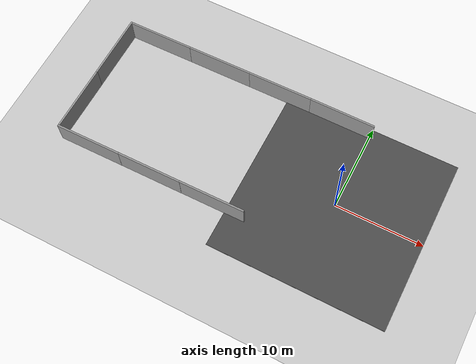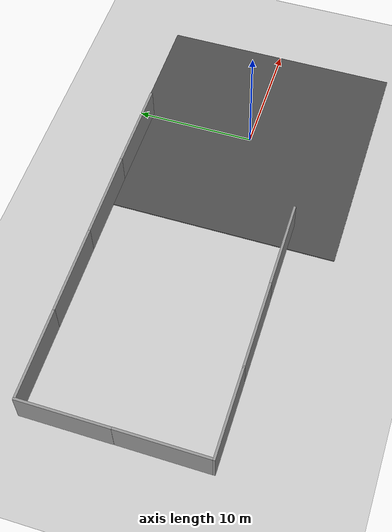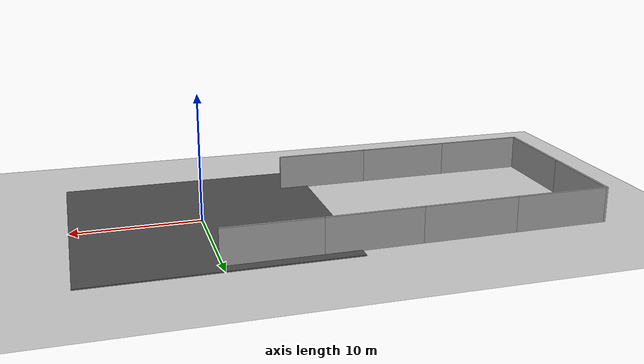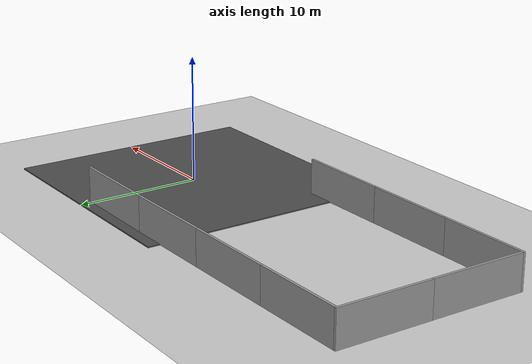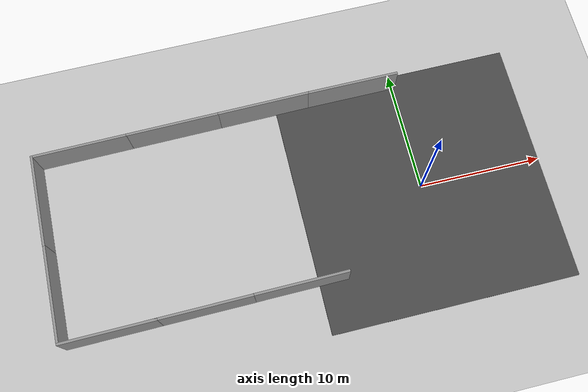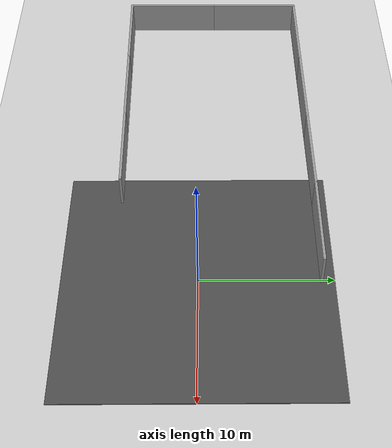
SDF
<sdf version="1.6">
 <world name="default">
  <light name="sun" type="directional">
   <pose>0 0 10 0 -0 0</pose>
   <diffuse>0.8 0.8 0.8 1</diffuse>
   <specular>0.1 0.1 0.1 1</specular>
   <attenuation>
    <range>1000</range>
    <constant>0.9</constant>
    <linear>0.01</linear>
    <quadratic>0.001</quadratic>
   </attenuation>
   <direction>-0.5 0.5 -1</direction>
  </light>
  <model name="ground_plane">
   <static>1</static>
   <link name="link">
    <collision name="collision">
     <geometry><plane><normal>0 0 1</normal><size>100 100</size></plane></geometry>
     <surface><friction><ode><mu>100</mu><mu2>50</mu2></ode></friction></surface>
    </collision>
    <visual name="visual">
     <cast_shadows>0</cast_shadows>
     <geometry><plane><normal>0 0 1</normal><size>100 100</size></plane></geometry>
     <material>
      <script><uri>file://media/materials/scripts/gazebo.material</uri><name>Gazebo/Grey</name></script>
     </material>
    </visual>
   </link>
  </model>
  <model name="asphalt_plane">
   <static>1</static>
   <link name="link">
    <collision name="collision"><geometry><box><size>20 20 0.1</size></box></geometry></collision>
    <visual name="visual">
     <cast_shadows>0</cast_shadows>
     <geometry><box><size>20 20 0.1</size></box></geometry>
     <material>
      <script>
       <uri>model://asphalt_plane/materials/scripts</uri>
       <uri>model://asphalt_plane/materials/textures</uri>
       <name>vrc/asphalt</name>
      </script>
     </material>
    </visual>
   </link>
  </model>
  <physics name="default_physics" default="0" type="ode">
   <ode>
    <solver>
     <type>quick</type>
     <iters>10</iters>
     <sor>1.3</sor>
     <use_dynamic_moi_rescaling>0</use_dynamic_moi_rescaling>
    </solver>
    <constraints>
     <cfm>0</cfm>
     <erp>0.2</erp>
     <contact_max_correcting_vel>100</contact_max_correcting_vel>
     <contact_surface_layer>0.001</contact_surface_layer>
    </constraints>
   </ode>
   <max_step_size>0.002</max_step_size>
   <real_time_factor>1</real_time_factor>
   <real_time_update_rate>500</real_time_update_rate>
  </physics>
  <model name="grey_wall">
   <static>1</static>
   <link name="link">
    <pose>0 0 1.4 0 -0 0</pose>
    <collision name="collision"><geometry><box><size>7.5 0.2 2.8</size></box></geometry></collision>
    <visual name="visual">
     <cast_shadows>0</cast_shadows>
     <geometry><box><size>7.5 0.2 2.8</size></box></geometry>
     <material>
      <script>
       <uri>model://grey_wall/materials/scripts</uri>
       <uri>model://grey_wall/materials/textures</uri>
       <name>vrc/grey_wall</name>
      </script>
     </material>
    </visual>
   </link>
   <pose>-10.9616 8.96597 0 0 0 -3.1323</pose>
  </model>
  <model name="grey_wall2">
   <static>1</static>
   <link name="link">
    <pose>0 0 1.4 0 -0 0</pose>
    <collision name="collision"><geometry><box><size>7.5 0.2 2.8</size></box></geometry></collision>
    <visual name="visual">
     <cast_shadows>0</cast_shadows>
     <geometry><box><size>7.5 0.2 2.8</size></box></geometry>
     <material>
      <script>
       <uri>model://grey_wall/materials/scripts</uri>
       <uri>model://grey_wall/materials/textures</uri>
       <name>vrc/grey_wall</name>
      </script>
     </material>
    </visual>
   </link>
   <pose>-3.5 9 0 0 -0 0</pose>
  </model>
  <gravity>0 0 -9.8066</gravity>
  <magnetic_field>6e-06 2.3e-05 -4.2e-05</magnetic_field>
  <atmosphere type="adiabatic"/>
  <scene><ambient>0.4 0.4 0.4 1</ambient><background>0.7 0.7 0.7 1</background><shadows>1</shadows></scene>
  <spherical_coordinates>
   <surface_model>EARTH_WGS84</surface_model>
   <latitude_deg>0</latitude_deg>
   <longitude_deg>0</longitude_deg>
   <elevation>0</elevation>
   <heading_deg>0</heading_deg>
  </spherical_coordinates>
  <model name="grey_wall_clone">
   <static>1</static>
   <link name="link">
    <pose>0 0 1.4 0 -0 0</pose>
    <collision name="collision"><geometry><box><size>7.5 0.2 2.8</size></box></geometry></collision>
    <visual name="visual">
     <cast_shadows>0</cast_shadows>
     <geometry><box><size>7.5 0.2 2.8</size></box></geometry>
     <material>
      <script>
       <uri>model://grey_wall/materials/scripts</uri>
       <uri>model://grey_wall/materials/textures</uri>
       <name>vrc/grey_wall</name>
      </script>
     </material>
    </visual>
   </link>
   <pose>-18.4246 8.89629 0 0 0 -3.1323</pose>
  </model>
  <model name="grey_wall_clone_clone">
   <static>1</static>
   <link name="link">
    <pose>0 0 1.4 0 -0 0</pose>
    <collision name="collision"><geometry><box><size>7.5 0.2 2.8</size></box></geometry></collision>
    <visual name="visual">
     <cast_shadows>0</cast_shadows>
     <geometry><box><size>7.5 0.2 2.8</size></box></geometry>
     <material>
      <script>
       <uri>model://grey_wall/materials/scripts</uri>
       <uri>model://grey_wall/materials/textures</uri>
       <name>vrc/grey_wall</name>
      </script>
     </material>
    </visual>
   </link>
   <pose>-25.8751 8.82654 0 0 0 -3.1323</pose>
  </model>
  <model name="grey_wall_0">
   <static>1</static>
   <link name="link">
    <pose>0 0 1.4 0 -0 0</pose>
    <collision name="collision"><geometry><box><size>7.5 0.2 2.8</size></box></geometry></collision>
    <visual name="visual">
     <cast_shadows>0</cast_shadows>
     <geometry><box><size>7.5 0.2 2.8</size></box></geometry>
     <material>
      <script>
       <uri>model://grey_wall/materials/scripts</uri>
       <uri>model://grey_wall/materials/textures</uri>
       <name>vrc/grey_wall</name>
      </script>
     </material>
    </visual>
   </link>
   <pose>-29.7286 5.13858 0 0 -0 1.56429</pose>
  </model>
  <model name="grey_wall_clone_clone_0">
   <static>1</static>
   <link name="link">
    <pose>0 0 1.4 0 -0 0</pose>
    <collision name="collision"><geometry><box><size>7.5 0.2 2.8</size></box></geometry></collision>
    <visual name="visual">
     <cast_shadows>0</cast_shadows>
     <geometry><box><size>7.5 0.2 2.8</size></box></geometry>
     <material>
      <script>
       <uri>model://grey_wall/materials/scripts</uri>
       <uri>model://grey_wall/materials/textures</uri>
       <name>vrc/grey_wall</name>
      </script>
     </material>
    </visual>
   </link>
   <pose>-29.7718 -2.31093 0 0 0 -1.57891</pose>
  </model>
  <model name="grey_wall_clone_clone_clone">
   <static>1</static>
   <link name="link">
    <pose>0 0 1.4 0 -0 0</pose>
    <collision name="collision"><geometry><box><size>7.5 0.2 2.8</size></box></geometry></collision>
    <visual name="visual">
     <cast_shadows>0</cast_shadows>
     <geometry><box><size>7.5 0.2 2.8</size></box></geometry>
     <material>
      <script>
       <uri>model://grey_wall/materials/scripts</uri>
       <uri>model://grey_wall/materials/textures</uri>
       <name>vrc/grey_wall</name>
      </script>
     </material>
    </visual>
   </link>
   <pose>-26.142 -6.12266 0 0 0 -3.1323</pose>
  </model>
  <model name="grey_wall_clone_clone_clone_0">
   <static>1</static>
   <link name="link">
    <pose>0 0 1.4 0 -0 0</pose>
    <collision name="collision"><geometry><box><size>7.5 0.2 2.8</size></box></geometry></collision>
    <visual name="visual">
     <cast_shadows>0</cast_shadows>
     <geometry><box><size>7.5 0.2 2.8</size></box></geometry>
     <material>
      <script>
       <uri>model://grey_wall/materials/scripts</uri>
       <uri>model://grey_wall/materials/textures</uri>
       <name>vrc/grey_wall</name>
      </script>
     </material>
    </visual>
   </link>
   <pose>-18.8356 -6.05152 0 0 0 -3.1323</pose>
  </model>
  <model name="grey_wall_clone_clone_clone_1">
   <static>1</static>
   <link name="link">
    <pose>0 0 1.4 0 -0 0</pose>
    <collision name="collision"><geometry><box><size>7.5 0.2 2.8</size></box></geometry></collision>
    <visual name="visual">
     <cast_shadows>0</cast_shadows>
     <geometry><box><size>7.5 0.2 2.8</size></box></geometry>
     <material>
      <script>
       <uri>model://grey_wall/materials/scripts</uri>
       <uri>model://grey_wall/materials/textures</uri>
       <name>vrc/grey_wall</name>
      </script>
     </material>
    </visual>
   </link>
   <pose>-11.3988 -5.9746 0 0 0 -3.1323</pose>
  </model>
 </world>
</sdf>
